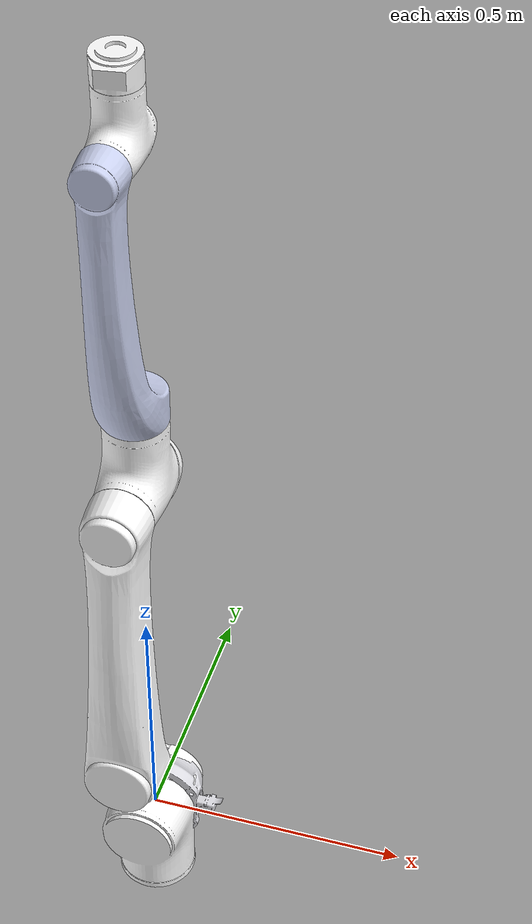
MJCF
<?xml version='1.0' encoding='utf-8'?>
<mujoco model="elfin10_l">
  <compiler angle="radian" />
  <asset>
    <mesh name="elfin_base" content_type="model/stl" file="elfin_base.STL" />
    <mesh name="elfin_link1" content_type="model/stl" file="elfin_link1.STL" />
    <mesh name="elfin_link2" content_type="model/stl" file="elfin_link2.STL" />
    <mesh name="elfin_link3" content_type="model/stl" file="elfin_link3.STL" />
    <mesh name="elfin_link4" content_type="model/stl" file="elfin_link4.STL" />
    <mesh name="elfin_link5" content_type="model/stl" file="elfin_link5.STL" />
    <mesh name="elfin_link6" content_type="model/stl" file="elfin_link6.STL" />
  </asset>
  <worldbody>
    <geom quat="0.707107 -0.707107 -9.52056e-07 0" type="mesh" rgba="0.86667 0.86667 0.8902 1" mesh="elfin_base" />
    <body name="elfin_link1" quat="1 2.17321e-06 -6.73204e-07 6.73207e-07">
      <inertial pos="2.6857e-05 -0.029266 0.1919" quat="0.412913 0.572471 0.412217 0.576071" mass="16.609" diaginertia="0.0461684 0.0388608 0.0343308" />
      <joint name="elfin_joint1" pos="0 0 0" axis="0 0 1" range="-3.14 3.14" actuatorfrcrange="-420 420" />
      <geom type="mesh" rgba="1 1 1 1" mesh="elfin_link1" />
      <body name="elfin_link2" pos="0 0 0.26" quat="0.707105 0.707108 0 0">
        <inertial pos="1.4387e-05 0.26969 0.14233" quat="0.508293 0.490934 -0.4916 0.508873" mass="8.7235" diaginertia="0.250812 0.24536 0.015605" />
        <joint name="elfin_joint2" pos="0 0 0" axis="0 0 1" range="-2.35 2.35" actuatorfrcrange="-420 420" />
        <geom type="mesh" rgba="1 1 1 1" mesh="elfin_link2" />
        <body name="elfin_link3" pos="0 0.6 0" quat="-2.59734e-06 0.707105 0.707108 -2.59735e-06">
          <inertial pos="0.053847 -1.0028e-05 -0.023648" quat="0.392725 0.394114 -0.586223 0.588884" mass="8.28817" diaginertia="0.0153395 0.0131855 0.011546" />
          <joint name="elfin_joint3" pos="0 0 0" axis="0 0 1" range="-2.61 2.61" actuatorfrcrange="-200 200" />
          <geom type="mesh" rgba="1 1 1 1" mesh="elfin_link3" />
          <body name="elfin_link4" quat="0.499998 0.5 0.500002 0.5">
            <inertial pos="2.0335e-05 -0.067673 0.38361" quat="0.99645 0.0841593 0.000268022 -0.00218813" mass="4.09857" diaginertia="0.091784 0.0912663 0.00608148" />
            <joint name="elfin_joint4" pos="0 0 0" axis="0 0 1" range="-3.14 3.14" actuatorfrcrange="-200 200" />
            <geom type="mesh" rgba="0.792157 0.819608 0.933333 1" mesh="elfin_link4" />
            <body name="elfin_link5" pos="0 0 0.7" quat="0.707105 -0.707108 0 0">
              <inertial pos="-2.5145e-05 -0.039561 -0.01936" quat="0.134089 0.699814 0.179634 0.678242" mass="3.74304" diaginertia="0.00344823 0.00293358 0.00273859" />
              <joint name="elfin_joint5" pos="0 0 0" axis="0 0 1" range="-2.56 2.56" actuatorfrcrange="-69 69" />
              <geom type="mesh" rgba="1 1 1 1" mesh="elfin_link5" />
              <body name="elfin_link6" quat="0.707105 0.707108 0 0">
                <inertial pos="0.00091682 -0.0048568 0.14017" quat="0.4998 0.500202 -0.511592 0.488131" mass="0.82406" diaginertia="0.000563568 0.000326633 0.000320709" />
                <joint name="elfin_joint6" pos="0 0 0" axis="0 0 1" range="-3.14 3.14" actuatorfrcrange="-69 69" />
                <geom type="mesh" rgba="1 1 1 1" mesh="elfin_link6" />
              </body>
            </body>
          </body>
        </body>
      </body>
    </body>
  </worldbody>
  <actuator>
    <general name="elfin_joint1_actuator" joint="elfin_joint1" gainprm="1" ctrlrange="-3.14 3.14" />
    <general name="elfin_joint2_actuator" joint="elfin_joint2" gainprm="1" ctrlrange="-3.14 3.14" />
    <general name="elfin_joint3_actuator" joint="elfin_joint3" gainprm="1" ctrlrange="-3.14 3.14" />
    <general name="elfin_joint4_actuator" joint="elfin_joint4" gainprm="1" ctrlrange="-3.14 3.14" />
    <general name="elfin_joint5_actuator" joint="elfin_joint5" gainprm="1" ctrlrange="-3.14 3.14" />
    <general name="elfin_joint6_actuator" joint="elfin_joint6" gainprm="1" ctrlrange="-3.14 3.14" />
  </actuator>
  <keyframe>
    <key name="home" qpos="0 0 0 0 0 0" />
  </keyframe>
</mujoco>
